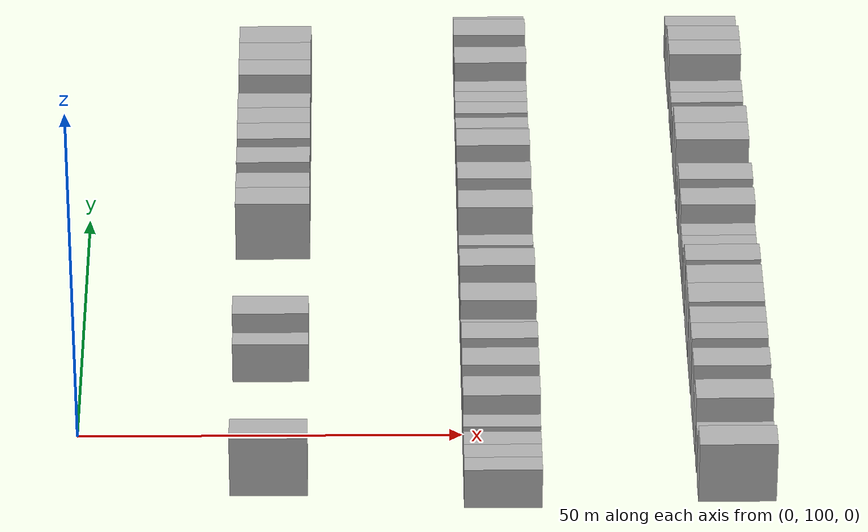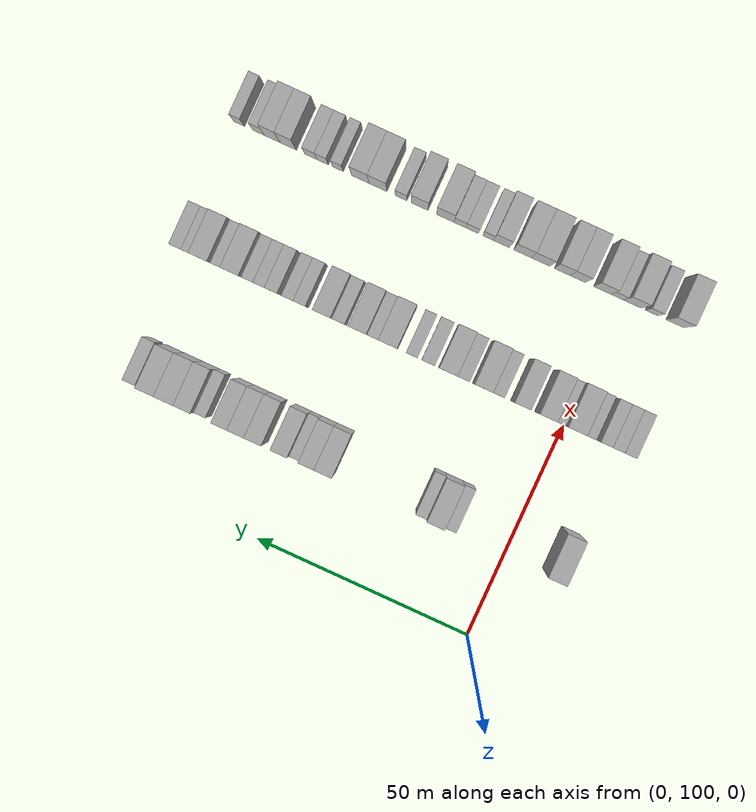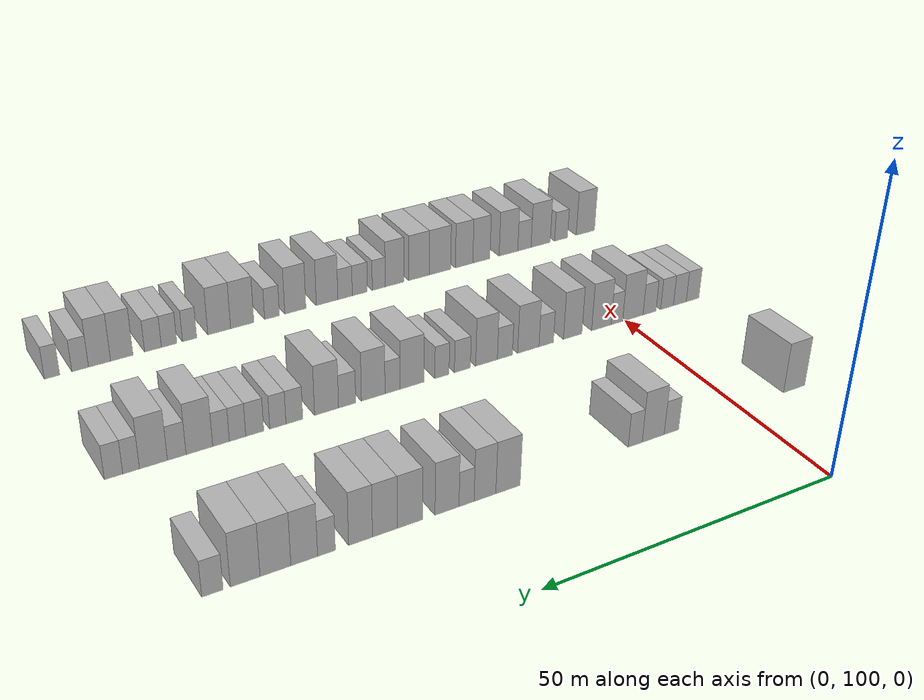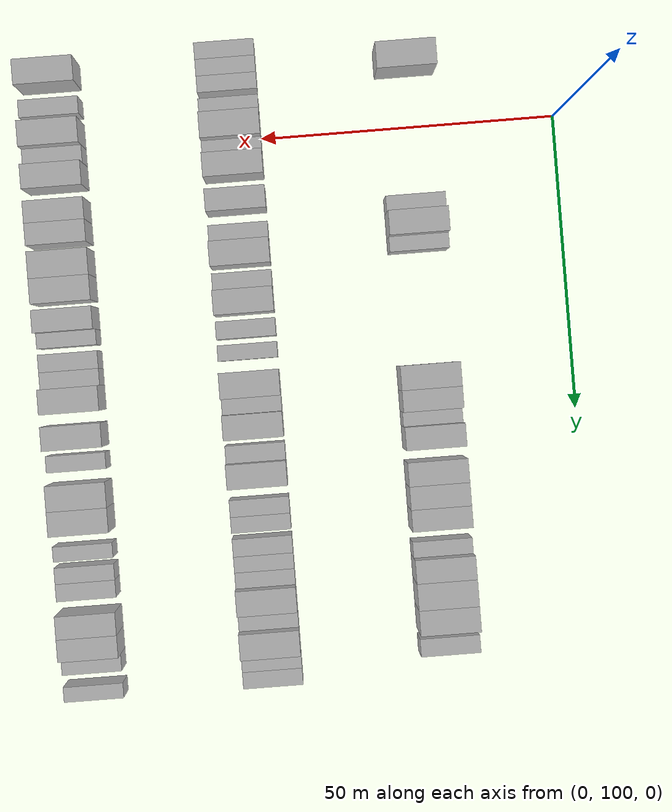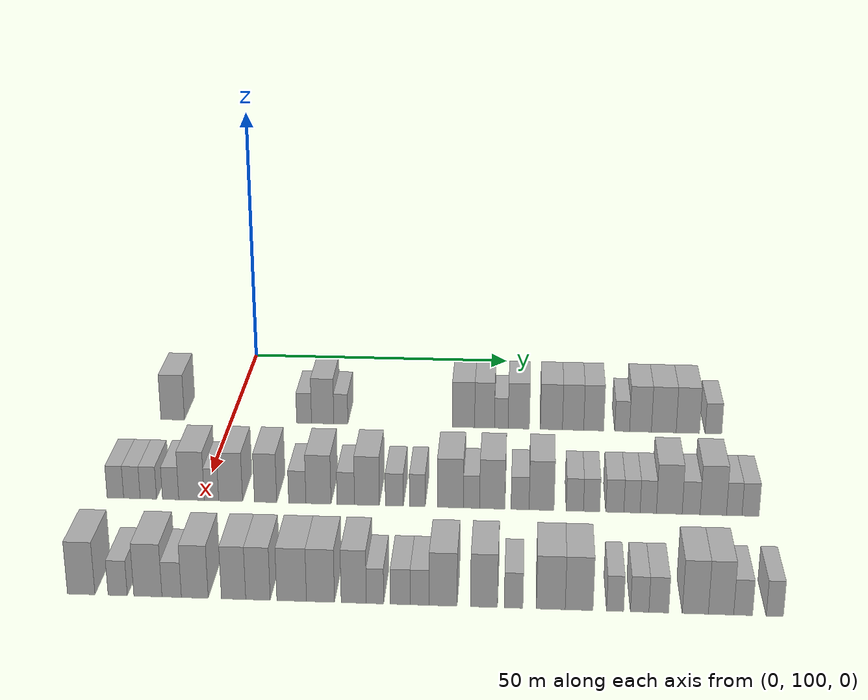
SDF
<sdf version="1.6">
 <world name="default">
  <model name="building_93">
   <static>1</static>
   <pose>25.0000 89.1199 0 0.000000 0.000000 0.000000</pose>
   <link name="link">
    <pose>0 0 4.50 0 0 0</pose>
    <collision name="collision"><geometry><box><size>10.0000 4.3740 9.0000</size></box></geometry></collision>
    <visual name="visual">
     <cast_shadows>0</cast_shadows>
     <geometry><box><size>10.0000 4.3740 9.0000</size></box></geometry>
     <material>
      <script>
       <uri>model://HANNAS_wall/materials/scripts</uri>
       <uri>model://HANNAS_wall/materials/textures</uri>
       <name>vrc/HANNAS_wall</name>
      </script>
     </material>
    </visual>
   </link>
  </model>
  <model name="building_94">
   <static>1</static>
   <pose>25.0000 113.4121 0 0.000000 0.000000 0.000000</pose>
   <link name="link">
    <pose>0 0 3.00 0 0 0</pose>
    <collision name="collision"><geometry><box><size>10.0000 2.7368 6.0000</size></box></geometry></collision>
    <visual name="visual">
     <cast_shadows>0</cast_shadows>
     <geometry><box><size>10.0000 2.7368 6.0000</size></box></geometry>
     <material>
      <script>
       <uri>model://HANNAS_wall/materials/scripts</uri>
       <uri>model://HANNAS_wall/materials/textures</uri>
       <name>vrc/HANNAS_wall</name>
      </script>
     </material>
    </visual>
   </link>
  </model>
  <model name="building_95">
   <static>1</static>
   <pose>25.0000 116.8325 0 0.000000 0.000000 0.000000</pose>
   <link name="link">
    <pose>0 0 4.50 0 0 0</pose>
    <collision name="collision"><geometry><box><size>10.0000 4.1038 9.0000</size></box></geometry></collision>
    <visual name="visual">
     <cast_shadows>0</cast_shadows>
     <geometry><box><size>10.0000 4.1038 9.0000</size></box></geometry>
     <material>
      <script>
       <uri>model://HANNAS_wall/materials/scripts</uri>
       <uri>model://HANNAS_wall/materials/textures</uri>
       <name>vrc/HANNAS_wall</name>
      </script>
     </material>
    </visual>
   </link>
  </model>
  <model name="building_96">
   <static>1</static>
   <pose>25.0000 120.1665 0 0.000000 0.000000 0.000000</pose>
   <link name="link">
    <pose>0 0 3.00 0 0 0</pose>
    <collision name="collision"><geometry><box><size>10.0000 2.5643 6.0000</size></box></geometry></collision>
    <visual name="visual">
     <cast_shadows>0</cast_shadows>
     <geometry><box><size>10.0000 2.5643 6.0000</size></box></geometry>
     <material>
      <script>
       <uri>model://HANNAS_wall/materials/scripts</uri>
       <uri>model://HANNAS_wall/materials/textures</uri>
       <name>vrc/HANNAS_wall</name>
      </script>
     </material>
    </visual>
   </link>
  </model>
  <model name="building_97">
   <static>1</static>
   <pose>25.0000 142.5787 0 0.000000 0.000000 0.000000</pose>
   <link name="link">
    <pose>0 0 4.50 0 0 0</pose>
    <collision name="collision"><geometry><box><size>10.0000 4.0867 9.0000</size></box></geometry></collision>
    <visual name="visual">
     <cast_shadows>0</cast_shadows>
     <geometry><box><size>10.0000 4.0867 9.0000</size></box></geometry>
     <material>
      <script>
       <uri>model://HANNAS_wall/materials/scripts</uri>
       <uri>model://HANNAS_wall/materials/textures</uri>
       <name>vrc/HANNAS_wall</name>
      </script>
     </material>
    </visual>
   </link>
  </model>
  <model name="building_98">
   <static>1</static>
   <pose>25.0000 146.4239 0 0.000000 0.000000 0.000000</pose>
   <link name="link">
    <pose>0 0 4.50 0 0 0</pose>
    <collision name="collision"><geometry><box><size>10.0000 3.6037 9.0000</size></box></geometry></collision>
    <visual name="visual">
     <cast_shadows>0</cast_shadows>
     <geometry><box><size>10.0000 3.6037 9.0000</size></box></geometry>
     <material>
      <script>
       <uri>model://HANNAS_wall/materials/scripts</uri>
       <uri>model://HANNAS_wall/materials/textures</uri>
       <name>vrc/HANNAS_wall</name>
      </script>
     </material>
    </visual>
   </link>
  </model>
  <model name="building_99">
   <static>1</static>
   <pose>25.0000 149.4639 0 0.000000 0.000000 0.000000</pose>
   <link name="link">
    <pose>0 0 3.00 0 0 0</pose>
    <collision name="collision"><geometry><box><size>10.0000 2.4763 6.0000</size></box></geometry></collision>
    <visual name="visual">
     <cast_shadows>0</cast_shadows>
     <geometry><box><size>10.0000 2.4763 6.0000</size></box></geometry>
     <material>
      <script>
       <uri>model://HANNAS_wall/materials/scripts</uri>
       <uri>model://HANNAS_wall/materials/textures</uri>
       <name>vrc/HANNAS_wall</name>
      </script>
     </material>
    </visual>
   </link>
  </model>
  <model name="building_100">
   <static>1</static>
   <pose>25.0000 152.6350 0 0.000000 0.000000 0.000000</pose>
   <link name="link">
    <pose>0 0 4.50 0 0 0</pose>
    <collision name="collision"><geometry><box><size>10.0000 3.8660 9.0000</size></box></geometry></collision>
    <visual name="visual">
     <cast_shadows>0</cast_shadows>
     <geometry><box><size>10.0000 3.8660 9.0000</size></box></geometry>
     <material>
      <script>
       <uri>model://HANNAS_wall/materials/scripts</uri>
       <uri>model://HANNAS_wall/materials/textures</uri>
       <name>vrc/HANNAS_wall</name>
      </script>
     </material>
    </visual>
   </link>
  </model>
  <model name="building_101">
   <static>1</static>
   <pose>25.0000 158.5579 0 0.000000 0.000000 0.000000</pose>
   <link name="link">
    <pose>0 0 4.50 0 0 0</pose>
    <collision name="collision"><geometry><box><size>10.0000 3.9797 9.0000</size></box></geometry></collision>
    <visual name="visual">
     <cast_shadows>0</cast_shadows>
     <geometry><box><size>10.0000 3.9797 9.0000</size></box></geometry>
     <material>
      <script>
       <uri>model://HANNAS_wall/materials/scripts</uri>
       <uri>model://HANNAS_wall/materials/textures</uri>
       <name>vrc/HANNAS_wall</name>
      </script>
     </material>
    </visual>
   </link>
  </model>
  <model name="building_102">
   <static>1</static>
   <pose>25.0000 162.4707 0 0.000000 0.000000 0.000000</pose>
   <link name="link">
    <pose>0 0 4.50 0 0 0</pose>
    <collision name="collision"><geometry><box><size>10.0000 3.8460 9.0000</size></box></geometry></collision>
    <visual name="visual">
     <cast_shadows>0</cast_shadows>
     <geometry><box><size>10.0000 3.8460 9.0000</size></box></geometry>
     <material>
      <script>
       <uri>model://HANNAS_wall/materials/scripts</uri>
       <uri>model://HANNAS_wall/materials/textures</uri>
       <name>vrc/HANNAS_wall</name>
      </script>
     </material>
    </visual>
   </link>
  </model>
  <model name="building_103">
   <static>1</static>
   <pose>25.0000 166.2058 0 0.000000 0.000000 0.000000</pose>
   <link name="link">
    <pose>0 0 4.50 0 0 0</pose>
    <collision name="collision"><geometry><box><size>10.0000 3.6241 9.0000</size></box></geometry></collision>
    <visual name="visual">
     <cast_shadows>0</cast_shadows>
     <geometry><box><size>10.0000 3.6241 9.0000</size></box></geometry>
     <material>
      <script>
       <uri>model://HANNAS_wall/materials/scripts</uri>
       <uri>model://HANNAS_wall/materials/textures</uri>
       <name>vrc/HANNAS_wall</name>
      </script>
     </material>
    </visual>
   </link>
  </model>
  <model name="building_104">
   <static>1</static>
   <pose>25.0000 171.3492 0 0.000000 0.000000 0.000000</pose>
   <link name="link">
    <pose>0 0 3.00 0 0 0</pose>
    <collision name="collision"><geometry><box><size>10.0000 2.6627 6.0000</size></box></geometry></collision>
    <visual name="visual">
     <cast_shadows>0</cast_shadows>
     <geometry><box><size>10.0000 2.6627 6.0000</size></box></geometry>
     <material>
      <script>
       <uri>model://HANNAS_wall/materials/scripts</uri>
       <uri>model://HANNAS_wall/materials/textures</uri>
       <name>vrc/HANNAS_wall</name>
      </script>
     </material>
    </visual>
   </link>
  </model>
  <model name="building_105">
   <static>1</static>
   <pose>25.0000 174.6445 0 0.000000 0.000000 0.000000</pose>
   <link name="link">
    <pose>0 0 4.50 0 0 0</pose>
    <collision name="collision"><geometry><box><size>10.0000 3.9279 9.0000</size></box></geometry></collision>
    <visual name="visual">
     <cast_shadows>0</cast_shadows>
     <geometry><box><size>10.0000 3.9279 9.0000</size></box></geometry>
     <material>
      <script>
       <uri>model://HANNAS_wall/materials/scripts</uri>
       <uri>model://HANNAS_wall/materials/textures</uri>
       <name>vrc/HANNAS_wall</name>
      </script>
     </material>
    </visual>
   </link>
  </model>
  <model name="building_106">
   <static>1</static>
   <pose>25.0000 178.8364 0 0.000000 0.000000 0.000000</pose>
   <link name="link">
    <pose>0 0 4.50 0 0 0</pose>
    <collision name="collision"><geometry><box><size>10.0000 4.4560 9.0000</size></box></geometry></collision>
    <visual name="visual">
     <cast_shadows>0</cast_shadows>
     <geometry><box><size>10.0000 4.4560 9.0000</size></box></geometry>
     <material>
      <script>
       <uri>model://HANNAS_wall/materials/scripts</uri>
       <uri>model://HANNAS_wall/materials/textures</uri>
       <name>vrc/HANNAS_wall</name>
      </script>
     </material>
    </visual>
   </link>
  </model>
  <model name="building_107">
   <static>1</static>
   <pose>25.0000 183.1700 0 0.000000 0.000000 0.000000</pose>
   <link name="link">
    <pose>0 0 4.50 0 0 0</pose>
    <collision name="collision"><geometry><box><size>10.0000 4.2111 9.0000</size></box></geometry></collision>
    <visual name="visual">
     <cast_shadows>0</cast_shadows>
     <geometry><box><size>10.0000 4.2111 9.0000</size></box></geometry>
     <material>
      <script>
       <uri>model://HANNAS_wall/materials/scripts</uri>
       <uri>model://HANNAS_wall/materials/textures</uri>
       <name>vrc/HANNAS_wall</name>
      </script>
     </material>
    </visual>
   </link>
  </model>
  <model name="building_108">
   <static>1</static>
   <pose>25.0000 187.7670 0 0.000000 0.000000 0.000000</pose>
   <link name="link">
    <pose>0 0 3.00 0 0 0</pose>
    <collision name="collision"><geometry><box><size>10.0000 2.9830 6.0000</size></box></geometry></collision>
    <visual name="visual">
     <cast_shadows>0</cast_shadows>
     <geometry><box><size>10.0000 2.9830 6.0000</size></box></geometry>
     <material>
      <script>
       <uri>model://HANNAS_wall/materials/scripts</uri>
       <uri>model://HANNAS_wall/materials/textures</uri>
       <name>vrc/HANNAS_wall</name>
      </script>
     </material>
    </visual>
   </link>
  </model>
  <model name="building_225">
   <static>1</static>
   <pose>55.0000 85.4746 0 0.000000 0.000000 0.000000</pose>
   <link name="link">
    <pose>0 0 3.00 0 0 0</pose>
    <collision name="collision"><geometry><box><size>10.0000 2.7887 6.0000</size></box></geometry></collision>
    <visual name="visual">
     <cast_shadows>0</cast_shadows>
     <geometry><box><size>10.0000 2.7887 6.0000</size></box></geometry>
     <material>
      <script>
       <uri>model://HANNAS_wall/materials/scripts</uri>
       <uri>model://HANNAS_wall/materials/textures</uri>
       <name>vrc/HANNAS_wall</name>
      </script>
     </material>
    </visual>
   </link>
  </model>
  <model name="building_226">
   <static>1</static>
   <pose>55.0000 88.2683 0 0.000000 0.000000 0.000000</pose>
   <link name="link">
    <pose>0 0 3.00 0 0 0</pose>
    <collision name="collision"><geometry><box><size>10.0000 2.7986 6.0000</size></box></geometry></collision>
    <visual name="visual">
     <cast_shadows>0</cast_shadows>
     <geometry><box><size>10.0000 2.7986 6.0000</size></box></geometry>
     <material>
      <script>
       <uri>model://HANNAS_wall/materials/scripts</uri>
       <uri>model://HANNAS_wall/materials/textures</uri>
       <name>vrc/HANNAS_wall</name>
      </script>
     </material>
    </visual>
   </link>
  </model>
  <model name="building_227">
   <static>1</static>
   <pose>55.0000 91.0518 0 0.000000 0.000000 0.000000</pose>
   <link name="link">
    <pose>0 0 3.00 0 0 0</pose>
    <collision name="collision"><geometry><box><size>10.0000 2.7686 6.0000</size></box></geometry></collision>
    <visual name="visual">
     <cast_shadows>0</cast_shadows>
     <geometry><box><size>10.0000 2.7686 6.0000</size></box></geometry>
     <material>
      <script>
       <uri>model://HANNAS_wall/materials/scripts</uri>
       <uri>model://HANNAS_wall/materials/textures</uri>
       <name>vrc/HANNAS_wall</name>
      </script>
     </material>
    </visual>
   </link>
  </model>
  <model name="building_228">
   <static>1</static>
   <pose>55.0000 94.8133 0 0.000000 0.000000 0.000000</pose>
   <link name="link">
    <pose>0 0 3.00 0 0 0</pose>
    <collision name="collision"><geometry><box><size>10.0000 2.7544 6.0000</size></box></geometry></collision>
    <visual name="visual">
     <cast_shadows>0</cast_shadows>
     <geometry><box><size>10.0000 2.7544 6.0000</size></box></geometry>
     <material>
      <script>
       <uri>model://HANNAS_wall/materials/scripts</uri>
       <uri>model://HANNAS_wall/materials/textures</uri>
       <name>vrc/HANNAS_wall</name>
      </script>
     </material>
    </visual>
   </link>
  </model>
  <model name="building_229">
   <static>1</static>
   <pose>55.0000 98.3449 0 0.000000 0.000000 0.000000</pose>
   <link name="link">
    <pose>0 0 4.50 0 0 0</pose>
    <collision name="collision"><geometry><box><size>10.0000 4.3088 9.0000</size></box></geometry></collision>
    <visual name="visual">
     <cast_shadows>0</cast_shadows>
     <geometry><box><size>10.0000 4.3088 9.0000</size></box></geometry>
     <material>
      <script>
       <uri>model://HANNAS_wall/materials/scripts</uri>
       <uri>model://HANNAS_wall/materials/textures</uri>
       <name>vrc/HANNAS_wall</name>
      </script>
     </material>
    </visual>
   </link>
  </model>
  <model name="building_230">
   <static>1</static>
   <pose>55.0000 101.7066 0 0.000000 0.000000 0.000000</pose>
   <link name="link">
    <pose>0 0 3.00 0 0 0</pose>
    <collision name="collision"><geometry><box><size>10.0000 2.4145 6.0000</size></box></geometry></collision>
    <visual name="visual">
     <cast_shadows>0</cast_shadows>
     <geometry><box><size>10.0000 2.4145 6.0000</size></box></geometry>
     <material>
      <script>
       <uri>model://HANNAS_wall/materials/scripts</uri>
       <uri>model://HANNAS_wall/materials/textures</uri>
       <name>vrc/HANNAS_wall</name>
      </script>
     </material>
    </visual>
   </link>
  </model>
  <model name="building_231">
   <static>1</static>
   <pose>55.0000 104.9259 0 0.000000 0.000000 0.000000</pose>
   <link name="link">
    <pose>0 0 4.50 0 0 0</pose>
    <collision name="collision"><geometry><box><size>10.0000 4.0241 9.0000</size></box></geometry></collision>
    <visual name="visual">
     <cast_shadows>0</cast_shadows>
     <geometry><box><size>10.0000 4.0241 9.0000</size></box></geometry>
     <material>
      <script>
       <uri>model://HANNAS_wall/materials/scripts</uri>
       <uri>model://HANNAS_wall/materials/textures</uri>
       <name>vrc/HANNAS_wall</name>
      </script>
     </material>
    </visual>
   </link>
  </model>
  <model name="building_232">
   <static>1</static>
   <pose>55.0000 110.8034 0 0.000000 0.000000 0.000000</pose>
   <link name="link">
    <pose>0 0 4.50 0 0 0</pose>
    <collision name="collision"><geometry><box><size>10.0000 3.7310 9.0000</size></box></geometry></collision>
    <visual name="visual">
     <cast_shadows>0</cast_shadows>
     <geometry><box><size>10.0000 3.7310 9.0000</size></box></geometry>
     <material>
      <script>
       <uri>model://HANNAS_wall/materials/scripts</uri>
       <uri>model://HANNAS_wall/materials/textures</uri>
       <name>vrc/HANNAS_wall</name>
      </script>
     </material>
    </visual>
   </link>
  </model>
  <model name="building_233">
   <static>1</static>
   <pose>55.0000 116.1136 0 0.000000 0.000000 0.000000</pose>
   <link name="link">
    <pose>0 0 3.00 0 0 0</pose>
    <collision name="collision"><geometry><box><size>10.0000 2.8892 6.0000</size></box></geometry></collision>
    <visual name="visual">
     <cast_shadows>0</cast_shadows>
     <geometry><box><size>10.0000 2.8892 6.0000</size></box></geometry>
     <material>
      <script>
       <uri>model://HANNAS_wall/materials/scripts</uri>
       <uri>model://HANNAS_wall/materials/textures</uri>
       <name>vrc/HANNAS_wall</name>
      </script>
     </material>
    </visual>
   </link>
  </model>
  <model name="building_234">
   <static>1</static>
   <pose>55.0000 119.6546 0 0.000000 0.000000 0.000000</pose>
   <link name="link">
    <pose>0 0 4.50 0 0 0</pose>
    <collision name="collision"><geometry><box><size>10.0000 4.1928 9.0000</size></box></geometry></collision>
    <visual name="visual">
     <cast_shadows>0</cast_shadows>
     <geometry><box><size>10.0000 4.1928 9.0000</size></box></geometry>
     <material>
      <script>
       <uri>model://HANNAS_wall/materials/scripts</uri>
       <uri>model://HANNAS_wall/materials/textures</uri>
       <name>vrc/HANNAS_wall</name>
      </script>
     </material>
    </visual>
   </link>
  </model>
  <model name="building_235">
   <static>1</static>
   <pose>55.0000 124.2137 0 0.000000 0.000000 0.000000</pose>
   <link name="link">
    <pose>0 0 3.00 0 0 0</pose>
    <collision name="collision"><geometry><box><size>10.0000 2.9254 6.0000</size></box></geometry></collision>
    <visual name="visual">
     <cast_shadows>0</cast_shadows>
     <geometry><box><size>10.0000 2.9254 6.0000</size></box></geometry>
     <material>
      <script>
       <uri>model://HANNAS_wall/materials/scripts</uri>
       <uri>model://HANNAS_wall/materials/textures</uri>
       <name>vrc/HANNAS_wall</name>
      </script>
     </material>
    </visual>
   </link>
  </model>
  <model name="building_236">
   <static>1</static>
   <pose>55.0000 127.7433 0 0.000000 0.000000 0.000000</pose>
   <link name="link">
    <pose>0 0 4.50 0 0 0</pose>
    <collision name="collision"><geometry><box><size>10.0000 4.1338 9.0000</size></box></geometry></collision>
    <visual name="visual">
     <cast_shadows>0</cast_shadows>
     <geometry><box><size>10.0000 4.1338 9.0000</size></box></geometry>
     <material>
      <script>
       <uri>model://HANNAS_wall/materials/scripts</uri>
       <uri>model://HANNAS_wall/materials/textures</uri>
       <name>vrc/HANNAS_wall</name>
      </script>
     </material>
    </visual>
   </link>
  </model>
  <model name="building_237">
   <static>1</static>
   <pose>55.0000 132.3088 0 0.000000 0.000000 0.000000</pose>
   <link name="link">
    <pose>0 0 3.00 0 0 0</pose>
    <collision name="collision"><geometry><box><size>10.0000 2.9973 6.0000</size></box></geometry></collision>
    <visual name="visual">
     <cast_shadows>0</cast_shadows>
     <geometry><box><size>10.0000 2.9973 6.0000</size></box></geometry>
     <material>
      <script>
       <uri>model://HANNAS_wall/materials/scripts</uri>
       <uri>model://HANNAS_wall/materials/textures</uri>
       <name>vrc/HANNAS_wall</name>
      </script>
     </material>
    </visual>
   </link>
  </model>
  <model name="building_238">
   <static>1</static>
   <pose>55.0000 136.1215 0 0.000000 0.000000 0.000000</pose>
   <link name="link">
    <pose>0 0 3.00 0 0 0</pose>
    <collision name="collision"><geometry><box><size>10.0000 2.6281 6.0000</size></box></geometry></collision>
    <visual name="visual">
     <cast_shadows>0</cast_shadows>
     <geometry><box><size>10.0000 2.6281 6.0000</size></box></geometry>
     <material>
      <script>
       <uri>model://HANNAS_wall/materials/scripts</uri>
       <uri>model://HANNAS_wall/materials/textures</uri>
       <name>vrc/HANNAS_wall</name>
      </script>
     </material>
    </visual>
   </link>
  </model>
  <model name="building_239">
   <static>1</static>
   <pose>55.0000 141.5999 0 0.000000 0.000000 0.000000</pose>
   <link name="link">
    <pose>0 0 4.50 0 0 0</pose>
    <collision name="collision"><geometry><box><size>10.0000 4.3288 9.0000</size></box></geometry></collision>
    <visual name="visual">
     <cast_shadows>0</cast_shadows>
     <geometry><box><size>10.0000 4.3288 9.0000</size></box></geometry>
     <material>
      <script>
       <uri>model://HANNAS_wall/materials/scripts</uri>
       <uri>model://HANNAS_wall/materials/textures</uri>
       <name>vrc/HANNAS_wall</name>
      </script>
     </material>
    </visual>
   </link>
  </model>
  <model name="building_240">
   <static>1</static>
   <pose>55.0000 145.1104 0 0.000000 0.000000 0.000000</pose>
   <link name="link">
    <pose>0 0 3.00 0 0 0</pose>
    <collision name="collision"><geometry><box><size>10.0000 2.6922 6.0000</size></box></geometry></collision>
    <visual name="visual">
     <cast_shadows>0</cast_shadows>
     <geometry><box><size>10.0000 2.6922 6.0000</size></box></geometry>
     <material>
      <script>
       <uri>model://HANNAS_wall/materials/scripts</uri>
       <uri>model://HANNAS_wall/materials/textures</uri>
       <name>vrc/HANNAS_wall</name>
      </script>
     </material>
    </visual>
   </link>
  </model>
  <model name="building_241">
   <static>1</static>
   <pose>55.0000 148.5452 0 0.000000 0.000000 0.000000</pose>
   <link name="link">
    <pose>0 0 4.50 0 0 0</pose>
    <collision name="collision"><geometry><box><size>10.0000 4.1774 9.0000</size></box></geometry></collision>
    <visual name="visual">
     <cast_shadows>0</cast_shadows>
     <geometry><box><size>10.0000 4.1774 9.0000</size></box></geometry>
     <material>
      <script>
       <uri>model://HANNAS_wall/materials/scripts</uri>
       <uri>model://HANNAS_wall/materials/textures</uri>
       <name>vrc/HANNAS_wall</name>
      </script>
     </material>
    </visual>
   </link>
  </model>
  <model name="building_242">
   <static>1</static>
   <pose>55.0000 153.1230 0 0.000000 0.000000 0.000000</pose>
   <link name="link">
    <pose>0 0 3.00 0 0 0</pose>
    <collision name="collision"><geometry><box><size>10.0000 2.9782 6.0000</size></box></geometry></collision>
    <visual name="visual">
     <cast_shadows>0</cast_shadows>
     <geometry><box><size>10.0000 2.9782 6.0000</size></box></geometry>
     <material>
      <script>
       <uri>model://HANNAS_wall/materials/scripts</uri>
       <uri>model://HANNAS_wall/materials/textures</uri>
       <name>vrc/HANNAS_wall</name>
      </script>
     </material>
    </visual>
   </link>
  </model>
  <model name="building_243">
   <static>1</static>
   <pose>55.0000 156.6714 0 0.000000 0.000000 0.000000</pose>
   <link name="link">
    <pose>0 0 4.50 0 0 0</pose>
    <collision name="collision"><geometry><box><size>10.0000 4.1185 9.0000</size></box></geometry></collision>
    <visual name="visual">
     <cast_shadows>0</cast_shadows>
     <geometry><box><size>10.0000 4.1185 9.0000</size></box></geometry>
     <material>
      <script>
       <uri>model://HANNAS_wall/materials/scripts</uri>
       <uri>model://HANNAS_wall/materials/textures</uri>
       <name>vrc/HANNAS_wall</name>
      </script>
     </material>
    </visual>
   </link>
  </model>
  <model name="building_244">
   <static>1</static>
   <pose>55.0000 162.1454 0 0.000000 0.000000 0.000000</pose>
   <link name="link">
    <pose>0 0 3.00 0 0 0</pose>
    <collision name="collision"><geometry><box><size>10.0000 2.8295 6.0000</size></box></geometry></collision>
    <visual name="visual">
     <cast_shadows>0</cast_shadows>
     <geometry><box><size>10.0000 2.8295 6.0000</size></box></geometry>
     <material>
      <script>
       <uri>model://HANNAS_wall/materials/scripts</uri>
       <uri>model://HANNAS_wall/materials/textures</uri>
       <name>vrc/HANNAS_wall</name>
      </script>
     </material>
    </visual>
   </link>
  </model>
  <model name="building_245">
   <static>1</static>
   <pose>55.0000 164.9035 0 0.000000 0.000000 0.000000</pose>
   <link name="link">
    <pose>0 0 3.00 0 0 0</pose>
    <collision name="collision"><geometry><box><size>10.0000 2.6868 6.0000</size></box></geometry></collision>
    <visual name="visual">
     <cast_shadows>0</cast_shadows>
     <geometry><box><size>10.0000 2.6868 6.0000</size></box></geometry>
     <material>
      <script>
       <uri>model://HANNAS_wall/materials/scripts</uri>
       <uri>model://HANNAS_wall/materials/textures</uri>
       <name>vrc/HANNAS_wall</name>
      </script>
     </material>
    </visual>
   </link>
  </model>
  <model name="building_246">
   <static>1</static>
   <pose>55.0000 168.7225 0 0.000000 0.000000 0.000000</pose>
   <link name="link">
    <pose>0 0 3.00 0 0 0</pose>
    <collision name="collision"><geometry><box><size>10.0000 2.9512 6.0000</size></box></geometry></collision>
    <visual name="visual">
     <cast_shadows>0</cast_shadows>
     <geometry><box><size>10.0000 2.9512 6.0000</size></box></geometry>
     <material>
      <script>
       <uri>model://HANNAS_wall/materials/scripts</uri>
       <uri>model://HANNAS_wall/materials/textures</uri>
       <name>vrc/HANNAS_wall</name>
      </script>
     </material>
    </visual>
   </link>
  </model>
  <model name="building_247">
   <static>1</static>
   <pose>55.0000 171.5270 0 0.000000 0.000000 0.000000</pose>
   <link name="link">
    <pose>0 0 3.00 0 0 0</pose>
    <collision name="collision"><geometry><box><size>10.0000 2.6578 6.0000</size></box></geometry></collision>
    <visual name="visual">
     <cast_shadows>0</cast_shadows>
     <geometry><box><size>10.0000 2.6578 6.0000</size></box></geometry>
     <material>
      <script>
       <uri>model://HANNAS_wall/materials/scripts</uri>
       <uri>model://HANNAS_wall/materials/textures</uri>
       <name>vrc/HANNAS_wall</name>
      </script>
     </material>
    </visual>
   </link>
  </model>
  <model name="building_248">
   <static>1</static>
   <pose>55.0000 174.1884 0 0.000000 0.000000 0.000000</pose>
   <link name="link">
    <pose>0 0 3.00 0 0 0</pose>
    <collision name="collision"><geometry><box><size>10.0000 2.6650 6.0000</size></box></geometry></collision>
    <visual name="visual">
     <cast_shadows>0</cast_shadows>
     <geometry><box><size>10.0000 2.6650 6.0000</size></box></geometry>
     <material>
      <script>
       <uri>model://HANNAS_wall/materials/scripts</uri>
       <uri>model://HANNAS_wall/materials/textures</uri>
       <name>vrc/HANNAS_wall</name>
      </script>
     </material>
    </visual>
   </link>
  </model>
  <model name="building_249">
   <static>1</static>
   <pose>55.0000 177.6307 0 0.000000 0.000000 0.000000</pose>
   <link name="link">
    <pose>0 0 4.50 0 0 0</pose>
    <collision name="collision"><geometry><box><size>10.0000 4.2197 9.0000</size></box></geometry></collision>
    <visual name="visual">
     <cast_shadows>0</cast_shadows>
     <geometry><box><size>10.0000 4.2197 9.0000</size></box></geometry>
     <material>
      <script>
       <uri>model://HANNAS_wall/materials/scripts</uri>
       <uri>model://HANNAS_wall/materials/textures</uri>
       <name>vrc/HANNAS_wall</name>
      </script>
     </material>
    </visual>
   </link>
  </model>
  <model name="building_250">
   <static>1</static>
   <pose>55.0000 181.2004 0 0.000000 0.000000 0.000000</pose>
   <link name="link">
    <pose>0 0 3.00 0 0 0</pose>
    <collision name="collision"><geometry><box><size>10.0000 2.9196 6.0000</size></box></geometry></collision>
    <visual name="visual">
     <cast_shadows>0</cast_shadows>
     <geometry><box><size>10.0000 2.9196 6.0000</size></box></geometry>
     <material>
      <script>
       <uri>model://HANNAS_wall/materials/scripts</uri>
       <uri>model://HANNAS_wall/materials/textures</uri>
       <name>vrc/HANNAS_wall</name>
      </script>
     </material>
    </visual>
   </link>
  </model>
  <model name="building_251">
   <static>1</static>
   <pose>55.0000 184.8130 0 0.000000 0.000000 0.000000</pose>
   <link name="link">
    <pose>0 0 4.50 0 0 0</pose>
    <collision name="collision"><geometry><box><size>10.0000 4.3056 9.0000</size></box></geometry></collision>
    <visual name="visual">
     <cast_shadows>0</cast_shadows>
     <geometry><box><size>10.0000 4.3056 9.0000</size></box></geometry>
     <material>
      <script>
       <uri>model://HANNAS_wall/materials/scripts</uri>
       <uri>model://HANNAS_wall/materials/textures</uri>
       <name>vrc/HANNAS_wall</name>
      </script>
     </material>
    </visual>
   </link>
  </model>
  <model name="building_252">
   <static>1</static>
   <pose>55.0000 188.2312 0 0.000000 0.000000 0.000000</pose>
   <link name="link">
    <pose>0 0 3.00 0 0 0</pose>
    <collision name="collision"><geometry><box><size>10.0000 2.5308 6.0000</size></box></geometry></collision>
    <visual name="visual">
     <cast_shadows>0</cast_shadows>
     <geometry><box><size>10.0000 2.5308 6.0000</size></box></geometry>
     <material>
      <script>
       <uri>model://HANNAS_wall/materials/scripts</uri>
       <uri>model://HANNAS_wall/materials/textures</uri>
       <name>vrc/HANNAS_wall</name>
      </script>
     </material>
    </visual>
   </link>
  </model>
  <model name="building_253">
   <static>1</static>
   <pose>55.0000 190.8833 0 0.000000 0.000000 0.000000</pose>
   <link name="link">
    <pose>0 0 3.00 0 0 0</pose>
    <collision name="collision"><geometry><box><size>10.0000 2.7735 6.0000</size></box></geometry></collision>
    <visual name="visual">
     <cast_shadows>0</cast_shadows>
     <geometry><box><size>10.0000 2.7735 6.0000</size></box></geometry>
     <material>
      <script>
       <uri>model://HANNAS_wall/materials/scripts</uri>
       <uri>model://HANNAS_wall/materials/textures</uri>
       <name>vrc/HANNAS_wall</name>
      </script>
     </material>
    </visual>
   </link>
  </model>
  <model name="building_371">
   <static>1</static>
   <pose>85.0000 87.2653 0 0.000000 0.000000 0.000000</pose>
   <link name="link">
    <pose>0 0 4.50 0 0 0</pose>
    <collision name="collision"><geometry><box><size>10.0000 4.1997 9.0000</size></box></geometry></collision>
    <visual name="visual">
     <cast_shadows>0</cast_shadows>
     <geometry><box><size>10.0000 4.1997 9.0000</size></box></geometry>
     <material>
      <script>
       <uri>model://HANNAS_wall/materials/scripts</uri>
       <uri>model://HANNAS_wall/materials/textures</uri>
       <name>vrc/HANNAS_wall</name>
      </script>
     </material>
    </visual>
   </link>
  </model>
  <model name="building_372">
   <static>1</static>
   <pose>85.0000 92.8317 0 0.000000 0.000000 0.000000</pose>
   <link name="link">
    <pose>0 0 3.00 0 0 0</pose>
    <collision name="collision"><geometry><box><size>10.0000 2.9330 6.0000</size></box></geometry></collision>
    <visual name="visual">
     <cast_shadows>0</cast_shadows>
     <geometry><box><size>10.0000 2.9330 6.0000</size></box></geometry>
     <material>
      <script>
       <uri>model://HANNAS_wall/materials/scripts</uri>
       <uri>model://HANNAS_wall/materials/textures</uri>
       <name>vrc/HANNAS_wall</name>
      </script>
     </material>
    </visual>
   </link>
  </model>
  <model name="building_373">
   <static>1</static>
   <pose>85.0000 97.4361 0 0.000000 0.000000 0.000000</pose>
   <link name="link">
    <pose>0 0 4.50 0 0 0</pose>
    <collision name="collision"><geometry><box><size>10.0000 4.2759 9.0000</size></box></geometry></collision>
    <visual name="visual">
     <cast_shadows>0</cast_shadows>
     <geometry><box><size>10.0000 4.2759 9.0000</size></box></geometry>
     <material>
      <script>
       <uri>model://HANNAS_wall/materials/scripts</uri>
       <uri>model://HANNAS_wall/materials/textures</uri>
       <name>vrc/HANNAS_wall</name>
      </script>
     </material>
    </visual>
   </link>
  </model>
  <model name="building_374">
   <static>1</static>
   <pose>85.0000 101.0489 0 0.000000 0.000000 0.000000</pose>
   <link name="link">
    <pose>0 0 3.00 0 0 0</pose>
    <collision name="collision"><geometry><box><size>10.0000 2.9495 6.0000</size></box></geometry></collision>
    <visual name="visual">
     <cast_shadows>0</cast_shadows>
     <geometry><box><size>10.0000 2.9495 6.0000</size></box></geometry>
     <material>
      <script>
       <uri>model://HANNAS_wall/materials/scripts</uri>
       <uri>model://HANNAS_wall/materials/textures</uri>
       <name>vrc/HANNAS_wall</name>
      </script>
     </material>
    </visual>
   </link>
  </model>
  <model name="building_375">
   <static>1</static>
   <pose>85.0000 104.5600 0 0.000000 0.000000 0.000000</pose>
   <link name="link">
    <pose>0 0 4.50 0 0 0</pose>
    <collision name="collision"><geometry><box><size>10.0000 4.0727 9.0000</size></box></geometry></collision>
    <visual name="visual">
     <cast_shadows>0</cast_shadows>
     <geometry><box><size>10.0000 4.0727 9.0000</size></box></geometry>
     <material>
      <script>
       <uri>model://HANNAS_wall/materials/scripts</uri>
       <uri>model://HANNAS_wall/materials/textures</uri>
       <name>vrc/HANNAS_wall</name>
      </script>
     </material>
    </visual>
   </link>
  </model>
  <model name="building_376">
   <static>1</static>
   <pose>85.0000 110.4352 0 0.000000 0.000000 0.000000</pose>
   <link name="link">
    <pose>0 0 4.50 0 0 0</pose>
    <collision name="collision"><geometry><box><size>10.0000 3.6778 9.0000</size></box></geometry></collision>
    <visual name="visual">
     <cast_shadows>0</cast_shadows>
     <geometry><box><size>10.0000 3.6778 9.0000</size></box></geometry>
     <material>
      <script>
       <uri>model://HANNAS_wall/materials/scripts</uri>
       <uri>model://HANNAS_wall/materials/textures</uri>
       <name>vrc/HANNAS_wall</name>
      </script>
     </material>
    </visual>
   </link>
  </model>
  <model name="building_377">
   <static>1</static>
   <pose>85.0000 114.1256 0 0.000000 0.000000 0.000000</pose>
   <link name="link">
    <pose>0 0 4.50 0 0 0</pose>
    <collision name="collision"><geometry><box><size>10.0000 3.7030 9.0000</size></box></geometry></collision>
    <visual name="visual">
     <cast_shadows>0</cast_shadows>
     <geometry><box><size>10.0000 3.7030 9.0000</size></box></geometry>
     <material>
      <script>
       <uri>model://HANNAS_wall/materials/scripts</uri>
       <uri>model://HANNAS_wall/materials/textures</uri>
       <name>vrc/HANNAS_wall</name>
      </script>
     </material>
    </visual>
   </link>
  </model>
  <model name="building_378">
   <static>1</static>
   <pose>85.0000 119.2123 0 0.000000 0.000000 0.000000</pose>
   <link name="link">
    <pose>0 0 4.50 0 0 0</pose>
    <collision name="collision"><geometry><box><size>10.0000 4.4705 9.0000</size></box></geometry></collision>
    <visual name="visual">
     <cast_shadows>0</cast_shadows>
     <geometry><box><size>10.0000 4.4705 9.0000</size></box></geometry>
     <material>
      <script>
       <uri>model://HANNAS_wall/materials/scripts</uri>
       <uri>model://HANNAS_wall/materials/textures</uri>
       <name>vrc/HANNAS_wall</name>
      </script>
     </material>
    </visual>
   </link>
  </model>
  <model name="building_379">
   <static>1</static>
   <pose>85.0000 123.5537 0 0.000000 0.000000 0.000000</pose>
   <link name="link">
    <pose>0 0 4.50 0 0 0</pose>
    <collision name="collision"><geometry><box><size>10.0000 4.2124 9.0000</size></box></geometry></collision>
    <visual name="visual">
     <cast_shadows>0</cast_shadows>
     <geometry><box><size>10.0000 4.2124 9.0000</size></box></geometry>
     <material>
      <script>
       <uri>model://HANNAS_wall/materials/scripts</uri>
       <uri>model://HANNAS_wall/materials/textures</uri>
       <name>vrc/HANNAS_wall</name>
      </script>
     </material>
    </visual>
   </link>
  </model>
  <model name="building_380">
   <static>1</static>
   <pose>85.0000 128.5503 0 0.000000 0.000000 0.000000</pose>
   <link name="link">
    <pose>0 0 4.50 0 0 0</pose>
    <collision name="collision"><geometry><box><size>10.0000 3.7808 9.0000</size></box></geometry></collision>
    <visual name="visual">
     <cast_shadows>0</cast_shadows>
     <geometry><box><size>10.0000 3.7808 9.0000</size></box></geometry>
     <material>
      <script>
       <uri>model://HANNAS_wall/materials/scripts</uri>
       <uri>model://HANNAS_wall/materials/textures</uri>
       <name>vrc/HANNAS_wall</name>
      </script>
     </material>
    </visual>
   </link>
  </model>
  <model name="building_381">
   <static>1</static>
   <pose>85.0000 131.7358 0 0.000000 0.000000 0.000000</pose>
   <link name="link">
    <pose>0 0 3.00 0 0 0</pose>
    <collision name="collision"><geometry><box><size>10.0000 2.5902 6.0000</size></box></geometry></collision>
    <visual name="visual">
     <cast_shadows>0</cast_shadows>
     <geometry><box><size>10.0000 2.5902 6.0000</size></box></geometry>
     <material>
      <script>
       <uri>model://HANNAS_wall/materials/scripts</uri>
       <uri>model://HANNAS_wall/materials/textures</uri>
       <name>vrc/HANNAS_wall</name>
      </script>
     </material>
    </visual>
   </link>
  </model>
  <model name="building_382">
   <static>1</static>
   <pose>85.0000 135.5143 0 0.000000 0.000000 0.000000</pose>
   <link name="link">
    <pose>0 0 3.00 0 0 0</pose>
    <collision name="collision"><geometry><box><size>10.0000 2.9668 6.0000</size></box></geometry></collision>
    <visual name="visual">
     <cast_shadows>0</cast_shadows>
     <geometry><box><size>10.0000 2.9668 6.0000</size></box></geometry>
     <material>
      <script>
       <uri>model://HANNAS_wall/materials/scripts</uri>
       <uri>model://HANNAS_wall/materials/textures</uri>
       <name>vrc/HANNAS_wall</name>
      </script>
     </material>
    </visual>
   </link>
  </model>
  <model name="building_383">
   <static>1</static>
   <pose>85.0000 138.4145 0 0.000000 0.000000 0.000000</pose>
   <link name="link">
    <pose>0 0 3.00 0 0 0</pose>
    <collision name="collision"><geometry><box><size>10.0000 2.8335 6.0000</size></box></geometry></collision>
    <visual name="visual">
     <cast_shadows>0</cast_shadows>
     <geometry><box><size>10.0000 2.8335 6.0000</size></box></geometry>
     <material>
      <script>
       <uri>model://HANNAS_wall/materials/scripts</uri>
       <uri>model://HANNAS_wall/materials/textures</uri>
       <name>vrc/HANNAS_wall</name>
      </script>
     </material>
    </visual>
   </link>
  </model>
  <model name="building_384">
   <static>1</static>
   <pose>85.0000 141.9225 0 0.000000 0.000000 0.000000</pose>
   <link name="link">
    <pose>0 0 4.50 0 0 0</pose>
    <collision name="collision"><geometry><box><size>10.0000 4.1826 9.0000</size></box></geometry></collision>
    <visual name="visual">
     <cast_shadows>0</cast_shadows>
     <geometry><box><size>10.0000 4.1826 9.0000</size></box></geometry>
     <material>
      <script>
       <uri>model://HANNAS_wall/materials/scripts</uri>
       <uri>model://HANNAS_wall/materials/textures</uri>
       <name>vrc/HANNAS_wall</name>
      </script>
     </material>
    </visual>
   </link>
  </model>
  <model name="building_385">
   <static>1</static>
   <pose>85.0000 148.0223 0 0.000000 0.000000 0.000000</pose>
   <link name="link">
    <pose>0 0 4.50 0 0 0</pose>
    <collision name="collision"><geometry><box><size>10.0000 4.0171 9.0000</size></box></geometry></collision>
    <visual name="visual">
     <cast_shadows>0</cast_shadows>
     <geometry><box><size>10.0000 4.0171 9.0000</size></box></geometry>
     <material>
      <script>
       <uri>model://HANNAS_wall/materials/scripts</uri>
       <uri>model://HANNAS_wall/materials/textures</uri>
       <name>vrc/HANNAS_wall</name>
      </script>
     </material>
    </visual>
   </link>
  </model>
  <model name="building_386">
   <static>1</static>
   <pose>85.0000 152.4175 0 0.000000 0.000000 0.000000</pose>
   <link name="link">
    <pose>0 0 3.00 0 0 0</pose>
    <collision name="collision"><geometry><box><size>10.0000 2.7733 6.0000</size></box></geometry></collision>
    <visual name="visual">
     <cast_shadows>0</cast_shadows>
     <geometry><box><size>10.0000 2.7733 6.0000</size></box></geometry>
     <material>
      <script>
       <uri>model://HANNAS_wall/materials/scripts</uri>
       <uri>model://HANNAS_wall/materials/textures</uri>
       <name>vrc/HANNAS_wall</name>
      </script>
     </material>
    </visual>
   </link>
  </model>
  <model name="building_387">
   <static>1</static>
   <pose>85.0000 157.9408 0 0.000000 0.000000 0.000000</pose>
   <link name="link">
    <pose>0 0 4.50 0 0 0</pose>
    <collision name="collision"><geometry><box><size>10.0000 4.2732 9.0000</size></box></geometry></collision>
    <visual name="visual">
     <cast_shadows>0</cast_shadows>
     <geometry><box><size>10.0000 4.2732 9.0000</size></box></geometry>
     <material>
      <script>
       <uri>model://HANNAS_wall/materials/scripts</uri>
       <uri>model://HANNAS_wall/materials/textures</uri>
       <name>vrc/HANNAS_wall</name>
      </script>
     </material>
    </visual>
   </link>
  </model>
  <model name="building_388">
   <static>1</static>
   <pose>85.0000 162.1386 0 0.000000 0.000000 0.000000</pose>
   <link name="link">
    <pose>0 0 4.50 0 0 0</pose>
    <collision name="collision"><geometry><box><size>10.0000 4.1224 9.0000</size></box></geometry></collision>
    <visual name="visual">
     <cast_shadows>0</cast_shadows>
     <geometry><box><size>10.0000 4.1224 9.0000</size></box></geometry>
     <material>
      <script>
       <uri>model://HANNAS_wall/materials/scripts</uri>
       <uri>model://HANNAS_wall/materials/textures</uri>
       <name>vrc/HANNAS_wall</name>
      </script>
     </material>
    </visual>
   </link>
  </model>
  <model name="building_389">
   <static>1</static>
   <pose>85.0000 167.4627 0 0.000000 0.000000 0.000000</pose>
   <link name="link">
    <pose>0 0 3.00 0 0 0</pose>
    <collision name="collision"><geometry><box><size>10.0000 2.5257 6.0000</size></box></geometry></collision>
    <visual name="visual">
     <cast_shadows>0</cast_shadows>
     <geometry><box><size>10.0000 2.5257 6.0000</size></box></geometry>
     <material>
      <script>
       <uri>model://HANNAS_wall/materials/scripts</uri>
       <uri>model://HANNAS_wall/materials/textures</uri>
       <name>vrc/HANNAS_wall</name>
      </script>
     </material>
    </visual>
   </link>
  </model>
  <model name="building_390">
   <static>1</static>
   <pose>85.0000 171.0822 0 0.000000 0.000000 0.000000</pose>
   <link name="link">
    <pose>0 0 3.00 0 0 0</pose>
    <collision name="collision"><geometry><box><size>10.0000 2.7132 6.0000</size></box></geometry></collision>
    <visual name="visual">
     <cast_shadows>0</cast_shadows>
     <geometry><box><size>10.0000 2.7132 6.0000</size></box></geometry>
     <material>
      <script>
       <uri>model://HANNAS_wall/materials/scripts</uri>
       <uri>model://HANNAS_wall/materials/textures</uri>
       <name>vrc/HANNAS_wall</name>
      </script>
     </material>
    </visual>
   </link>
  </model>
  <model name="building_391">
   <static>1</static>
   <pose>85.0000 173.8997 0 0.000000 0.000000 0.000000</pose>
   <link name="link">
    <pose>0 0 3.00 0 0 0</pose>
    <collision name="collision"><geometry><box><size>10.0000 2.9218 6.0000</size></box></geometry></collision>
    <visual name="visual">
     <cast_shadows>0</cast_shadows>
     <geometry><box><size>10.0000 2.9218 6.0000</size></box></geometry>
     <material>
      <script>
       <uri>model://HANNAS_wall/materials/scripts</uri>
       <uri>model://HANNAS_wall/materials/textures</uri>
       <name>vrc/HANNAS_wall</name>
      </script>
     </material>
    </visual>
   </link>
  </model>
  <model name="building_392">
   <static>1</static>
   <pose>85.0000 179.2735 0 0.000000 0.000000 0.000000</pose>
   <link name="link">
    <pose>0 0 4.50 0 0 0</pose>
    <collision name="collision"><geometry><box><size>10.0000 3.8259 9.0000</size></box></geometry></collision>
    <visual name="visual">
     <cast_shadows>0</cast_shadows>
     <geometry><box><size>10.0000 3.8259 9.0000</size></box></geometry>
     <material>
      <script>
       <uri>model://HANNAS_wall/materials/scripts</uri>
       <uri>model://HANNAS_wall/materials/textures</uri>
       <name>vrc/HANNAS_wall</name>
      </script>
     </material>
    </visual>
   </link>
  </model>
  <model name="building_393">
   <static>1</static>
   <pose>85.0000 183.0448 0 0.000000 0.000000 0.000000</pose>
   <link name="link">
    <pose>0 0 4.50 0 0 0</pose>
    <collision name="collision"><geometry><box><size>10.0000 3.7167 9.0000</size></box></geometry></collision>
    <visual name="visual">
     <cast_shadows>0</cast_shadows>
     <geometry><box><size>10.0000 3.7167 9.0000</size></box></geometry>
     <material>
      <script>
       <uri>model://HANNAS_wall/materials/scripts</uri>
       <uri>model://HANNAS_wall/materials/textures</uri>
       <name>vrc/HANNAS_wall</name>
      </script>
     </material>
    </visual>
   </link>
  </model>
  <model name="building_394">
   <static>1</static>
   <pose>85.0000 186.2888 0 0.000000 0.000000 0.000000</pose>
   <link name="link">
    <pose>0 0 3.00 0 0 0</pose>
    <collision name="collision"><geometry><box><size>10.0000 2.7713 6.0000</size></box></geometry></collision>
    <visual name="visual">
     <cast_shadows>0</cast_shadows>
     <geometry><box><size>10.0000 2.7713 6.0000</size></box></geometry>
     <material>
      <script>
       <uri>model://HANNAS_wall/materials/scripts</uri>
       <uri>model://HANNAS_wall/materials/textures</uri>
       <name>vrc/HANNAS_wall</name>
      </script>
     </material>
    </visual>
   </link>
  </model>
  <model name="building_395">
   <static>1</static>
   <pose>85.0000 190.9279 0 0.000000 0.000000 0.000000</pose>
   <link name="link">
    <pose>0 0 3.00 0 0 0</pose>
    <collision name="collision"><geometry><box><size>10.0000 2.5069 6.0000</size></box></geometry></collision>
    <visual name="visual">
     <cast_shadows>0</cast_shadows>
     <geometry><box><size>10.0000 2.5069 6.0000</size></box></geometry>
     <material>
      <script>
       <uri>model://HANNAS_wall/materials/scripts</uri>
       <uri>model://HANNAS_wall/materials/textures</uri>
       <name>vrc/HANNAS_wall</name>
      </script>
     </material>
    </visual>
   </link>
  </model>
 </world>
</sdf>
